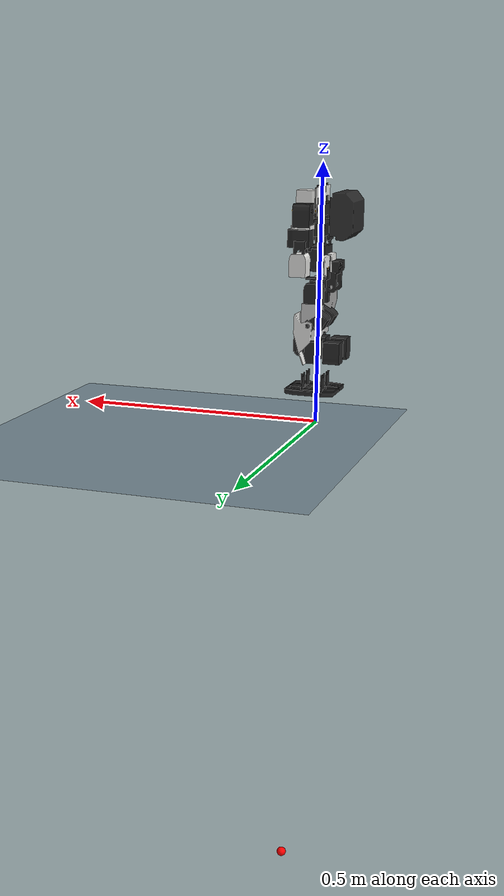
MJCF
<mujoco model="roid1_mjcf scene">
  <include file="roid1_mjcf.xml"/>

  <statistic center="0 0 0.500000" extent="0.800000"/>

  <visual>
    <headlight diffuse="0.6 0.6 0.6" ambient="0.3 0.3 0.3" specular="0 0 0"/>
    <rgba haze="0.15 0.25 0.35 1"/>
    <global azimuth="-130" elevation="-20"/>
  </visual>

  <asset>
    <texture type="skybox" builtin="gradient" rgb1="0.3 0.5 0.7" rgb2="0 0 0" width="512" height="3072"/>
    <texture type="2d" name="groundplane" builtin="checker" mark="edge" rgb1="0.2 0.3 0.4" rgb2="0.1 0.2 0.3"
      markrgb="0.8 0.8 0.8" width="300" height="300"/>
    <material name="groundplane" texture="groundplane" texuniform="true" texrepeat="5 5" reflectance="0.2"/>
  </asset>

  <worldbody>
    <!-- Ground/Environment -->
    <light pos="0 0 1.5" dir="0 0 -1" directional="true"/>
    <geom name="floor" size="0 0 0.05" type="plane" material="groundplane" group="0"/>
    <!-- Touch detection sphere: world-fixed, hidden unless --sphere is specified. -->
    <body name="touch_sphere_body" pos="0.05 0.0 -1.0">
      <geom name="touch_sphere" type="sphere" size="0.01" rgba="1 0 0 1" contype="1" conaffinity="1"/>
    </body>
  </worldbody>
</mujoco>

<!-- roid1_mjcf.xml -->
<mujoco model="roid1_mjcf">
  <compiler angle="radian" meshdir="assets" autolimits="true" />

  <option timestep="0.002" iterations="30" cone="elliptic" impratio="100" />

  <default>
    <!-- textset -->
    <joint damping="0.1" armature="0.01" frictionloss="0.005"/>
    <position inheritrange="1" timeconst="0.01"/>
    <geom friction="0.4" margin="0.001" condim="3"/>
    <!-- textーtext：group=0 -->
    <default class="collision">
      <geom group="0"/>
    </default>
    <!-- text：group=1(text) -->
    <default class="visual">
      <geom contype="0" conaffinity="0" group="1"/>
    </default>
  </default>

  <asset>
    <material name="metal" rgba=".9 .95 .95 1" />
    <material name="black" rgba="0 0 0 1" />
    <material name="white" rgba="1 1 1 1" />
    <material name="gray" rgba="0.671705 0.692426 0.774270 1" />

    <mesh name="c_chest" file="c_chest.obj" />
    <mesh name="c_chest_dec1" file="c_chest_dec1.obj" />
    <mesh name="c_chest_dec2" file="c_chest_dec2.obj" />
    <mesh name="c_head" file="c_head.obj" />
    <mesh name="c_waist" file="c_waist.obj" />
    <mesh name="l_ankle" file="l_ankle.obj" />
    <mesh name="l_arm_lower" file="l_arm_lower.obj" />
    <mesh name="l_arm_upper" file="l_arm_upper.obj" />
    <mesh name="l_arm_upper_dec1" file="l_arm_upper_dec1.obj" />
    <mesh name="l_elbow" file="l_elbow.obj" />
    <mesh name="l_foot_middle" file="l_foot_middle.obj" />
    <mesh name="l_hipjoint_lower" file="l_hipjoint_lower.obj" />
    <mesh name="l_hipjoint_upper" file="l_hipjoint_upper.obj" />
    <mesh name="l_hipjoint_upper_dec1" file="l_hipjoint_upper_dec1.obj" />
    <mesh name="l_leg_lower" file="l_leg_lower.obj" />
    <mesh name="l_leg_lower_dec1" file="l_leg_lower_dec1.obj" />
    <mesh name="l_leg_upper" file="l_leg_upper.obj" />
    <mesh name="l_leg_upper_dec1" file="l_leg_upper_dec1.obj" />
    <mesh name="l_shoulder" file="l_shoulder.obj" />
    <mesh name="l_shoulder_dec1" file="l_shoulder_dec1.obj" />
    <mesh name="r_ankle" file="r_ankle.obj" />
    <mesh name="r_arm_lower" file="r_arm_lower.obj" />
    <mesh name="r_arm_upper" file="r_arm_upper.obj" />
    <mesh name="r_arm_upper_dec1" file="r_arm_upper_dec1.obj" />
    <mesh name="r_elbow" file="r_elbow.obj" />
    <mesh name="r_foot_middle" file="r_foot_middle.obj" />
    <mesh name="r_hipjoint_lower" file="r_hipjoint_lower.obj" />
    <mesh name="r_hipjoint_upper" file="r_hipjoint_upper.obj" />
    <mesh name="r_hipjoint_upper_dec1" file="r_hipjoint_upper_dec1.obj" />
    <mesh name="r_leg_lower" file="r_leg_lower.obj" />
    <mesh name="r_leg_lower_dec1" file="r_leg_lower_dec1.obj" />
    <mesh name="r_leg_upper" file="r_leg_upper.obj" />
    <mesh name="r_leg_upper_dec1" file="r_leg_upper_dec1.obj" />
    <mesh name="r_shoulder" file="r_shoulder.obj" />
    <mesh name="r_shoulder_dec1" file="r_shoulder_dec1.obj" />
  </asset>

  <worldbody>
    <!-- タッチ検出球: ワールド固定, 接触で非表示 -->
    <body name="touch_sphere_body" pos="0.05 0.0 -1.0">
      <geom name="touch_sphere" type="sphere" size="0.01" rgba="1 0 0 1" contype="1" conaffinity="1"/>
    </body>
    <body name="c_waist" pos="0 0 0.35">
      <freejoint />
      <!-- text(displaytext) -->
      <geom class="visual" type="mesh" mesh="c_waist" rgba="0.153 0.153 0.153 1.0" group="1"/>
      <!-- textー(text) -->
      <geom class="collision" type="box" size="0.0205 0.03205 0.01475" pos="-0.0115 0.0 -0.002" quat="1.0 0.0 0.0 0.0" group="3"/>
      <body name="c_chest" pos="0.0 -0.0 0.0198">
        <joint name="c_chest_yaw" type="hinge" pos="0 0 0" axis="0 0 1" range="-3.141592653589793 3.141592653589793" limited="true" margin="0.0035" armature="0.01" frictionloss="0.005" damping="0.18" />
        <inertial pos="-0.016071 -0.000121 0.032638" mass="0.4215" fullinertia="0.0006944 0.00082653 0.00086974 0 0 0" />
        <!-- text(displaytext) -->
        <geom class="visual" type="mesh" mesh="c_chest" rgba="0.153 0.153 0.153 1.0" group="1"/>
        <!-- textー(text) -->
        <geom class="collision" type="box" size="0.0585 0.04505 0.0278" pos="-0.0131 -0.0005 0.0341" quat="1.0 0.0 0.0 0.0" group="3"/>
        <body name="c_head" pos="0.01603 0.0 0.0624">
          <joint name="c_head_yaw" type="hinge" pos="0 0 0" axis="0 0 1" range="-3.141592653589793 3.141592653589793" limited="true" margin="0.0035" armature="0.01" frictionloss="0.005" damping="0.18" />
          <inertial pos="0.004414 0.000003 0.02119" mass="0.013" fullinertia="0.0000041 0.00000528 0.00000497 0 0 0" />
          <!-- text(displaytext) -->
          <geom class="visual" type="mesh" mesh="c_head" rgba="0.882 0.882 0.871 1.0" group="1"/>
          <!-- textー(text) -->
          <geom class="collision" type="box" size="0.0235 0.0145 0.01575" pos="0.0032 0.0 0.0227" quat="1.0 0.0 0.0 0.0" group="3"/>
          <!-- FPVカメラ: 前方+X向き(Rx(π/2)·Ry(-π/2)), 上方+Z, 目の位置 -->
          <camera name="head_fpv" pos="0.015 0 0.025" euler="1.5707963 -1.5707963 0" fovy="80"/>
        </body>
        <body name="l_shoulder" pos="0.01603 0.048855 0.045405">
          <joint name="l_shoulder_pitch" type="hinge" pos="0 0 0" axis="0 1 0" range="-3.141592653589793 3.141592653589793" limited="true" margin="0.0035" armature="0.01" frictionloss="0.005" damping="0.18" />
          <inertial pos="-0.000143 0.021036 0.000103" mass="0.014" fullinertia="0.00000319 0.00000465 0.0000058 0 0 0" />
          <!-- text(displaytext) -->
          <geom class="visual" type="mesh" mesh="l_shoulder" rgba="0.882 0.882 0.871 1.0" group="1"/>
          <!-- textー(text) -->
          <geom class="collision" type="cylinder" size="0.01 0.0036" pos="0.0 0.004 0.0" quat="0.7071067811865476 -0.7071067811865475 0.0 0.0" group="3"/>
          <body name="l_arm_upper" pos="0.0 0.02555 0.0">
            <joint name="l_arm_upper_roll" type="hinge" pos="0 0 0" axis="1 0 0" range="-0.174532925199433 3.316125578789226" limited="true" margin="0.0035" armature="0.01" frictionloss="0.005" damping="0.18" />
            <inertial pos="-0.002104 0.000357 -0.033527" mass="0.098" fullinertia="0.00007063 0.00007913 0.00003688 0 0 0" />
            <!-- text(displaytext) -->
            <geom class="visual" type="mesh" mesh="l_arm_upper" rgba="0.153 0.153 0.153 1.0" group="1"/>
            <!-- textー(text) -->
            <geom class="collision" type="box" size="0.01445 0.01045 0.038" pos="-0.0002 0.0 -0.0305" quat="1.0 0.0 0.0 0.0" group="3"/>
            <body name="l_elbow" pos="-0.00015 0.0 -0.074">
              <joint name="l_elbow_yaw" type="hinge" pos="0 0 0" axis="0 0 1" range="-1.570796326794897 1.570796326794897" limited="true" margin="0.0035" armature="0.01" frictionloss="0.005" damping="0.18" />
              <inertial pos="-0.006581 0.000258 -0.014196" mass="0.044" fullinertia="0.0000105 0.00001256 0.00001357 0 0 0" />
              <!-- text(displaytext) -->
              <geom class="visual" type="mesh" mesh="l_elbow" rgba="0.153 0.153 0.153 1.0" group="1"/>
              <!-- textー(text) -->
              <geom class="collision" type="box" size="0.0205 0.01505 0.01005" pos="-0.007 0.0005 -0.0145" quat="1.0 0.0 0.0 0.0" group="3"/>
              <body name="l_arm_lower" pos="0.004527 0.0 -0.01457">
                <joint name="l_arm_lower_pitch" type="hinge" pos="0 0 0" axis="0 1 0" range="-2.443460952792061 0.523598775598299" limited="true" margin="0.0035" armature="0.01" frictionloss="0.005" damping="0.18" />
                <inertial pos="-0.002104 0.000357 -0.043527" mass="0.03" fullinertia="0.00005277 0.00005106 0.00001242 0 0 0" />
                <!-- text(displaytext) -->
                <geom class="visual" type="mesh" mesh="l_arm_lower" rgba="0.882 0.882 0.871 1.0" group="1"/>
                <!-- textー(text) -->
                <geom class="collision" type="capsule" size="0.0161 0.01945" pos="-0.0022 0.0 -0.0616" quat="1.0 0.0 0.0 0.0" group="3"/>
              </body>
            </body>
            <geom class="visual" type="mesh" mesh="l_arm_upper_dec1" rgba="0.882 0.882 0.871 1.0" pos="0.0 0.0 0.0"/>
          </body>
          <geom class="visual" type="mesh" mesh="l_shoulder_dec1" rgba="1.0 0.667 0.0 1.0" pos="0.0 0.0 0.0"/>
        </body>
        <body name="r_shoulder" pos="0.01603 -0.048855 0.045405">
          <joint name="r_shoulder_pitch" type="hinge" pos="0 0 0" axis="0 1 0" range="-3.141592653589793 3.141592653589793" limited="true" margin="0.0035" armature="0.01" frictionloss="0.005" damping="0.18" />
          <inertial pos="-0.000143 -0.021036 0.000103" mass="0.014" fullinertia="0.00000319 0.00000465 0.0000058 0 0 0" />
          <!-- text(displaytext) -->
          <geom class="visual" type="mesh" mesh="r_shoulder" rgba="0.882 0.882 0.871 1.0" group="1"/>
          <!-- textー(text) -->
          <geom class="collision" type="cylinder" size="0.01 0.0036" pos="0.0 -0.004 0.0" quat="0.7071067811865476 0.7071067811865475 0.0 -0.0" group="3"/>
          <body name="r_arm_upper" pos="0.0 -0.02555 0.0">
            <joint name="r_arm_upper_roll" type="hinge" pos="0 0 0" axis="1 0 0" range="-3.316125578789226 0.174532925199433" limited="true" margin="0.0035" armature="0.01" frictionloss="0.005" damping="0.18" />
            <inertial pos="-0.002104 -0.000357 -0.033527" mass="0.098" fullinertia="0.00007063 0.00007913 0.00003688 0 0 0" />
            <!-- text(displaytext) -->
            <geom class="visual" type="mesh" mesh="r_arm_upper" rgba="0.153 0.153 0.153 1.0" group="1"/>
            <!-- textー(text) -->
            <geom class="collision" type="box" size="0.01445 0.01045 0.038" pos="-0.0002 0.0 -0.0305" quat="1.0 0.0 0.0 0.0" group="3"/>
            <body name="r_elbow" pos="-0.00015 -0.0 -0.074">
              <joint name="r_elbow_yaw" type="hinge" pos="0 0 0" axis="0 0 1" range="-1.570796326794897 1.570796326794897" limited="true" margin="0.0035" armature="0.01" frictionloss="0.005" damping="0.18" />
              <inertial pos="-0.006581 -0.000258 -0.014196" mass="0.044" fullinertia="0.0000105 0.00001256 0.00001357 0 0 0" />
              <!-- text(displaytext) -->
              <geom class="visual" type="mesh" mesh="r_elbow" rgba="0.153 0.153 0.153 1.0" group="1"/>
              <!-- textー(text) -->
              <geom class="collision" type="box" size="0.0205 0.01505 0.01005" pos="-0.007 -0.0005 -0.0145" quat="1.0 0.0 0.0 0.0" group="3"/>
              <body name="r_arm_lower" pos="0.004527 -0.0 -0.01457">
                <joint name="r_arm_lower_pitch" type="hinge" pos="0 0 0" axis="0 1 0" range="-2.443460952792061 0.523598775598299" limited="true" margin="0.0035" armature="0.01" frictionloss="0.005" damping="0.18" />
                <inertial pos="-0.002104 -0.000357 -0.043527" mass="0.03" fullinertia="0.00005277 0.00005106 0.00001242 0 0 0" />
                <!-- text(displaytext) -->
                <geom class="visual" type="mesh" mesh="r_arm_lower" rgba="0.882 0.882 0.871 1.0" group="1"/>
                <!-- textー(text) -->
                <geom class="collision" type="capsule" size="0.0161 0.02195" pos="-0.0022 0.0 -0.0626" quat="1.0 0.0 0.0 0.0" group="3"/>
              </body>
            </body>
            <geom class="visual" type="mesh" mesh="r_arm_upper_dec1" rgba="0.882 0.882 0.871 1.0" pos="0.0 -0.0 0.0"/>
          </body>
          <geom class="visual" type="mesh" mesh="r_shoulder_dec1" rgba="1.0 0.667 0.0 1.0" pos="0.0 -0.0 0.0"/>
        </body>
        <geom class="visual" type="mesh" mesh="c_chest_dec1" rgba="0.882 0.882 0.871 1.0" pos="0.0 0.0 0.0"/>
        <geom class="visual" type="mesh" mesh="c_chest_dec2" rgba="0.153 0.153 0.153 1.0" pos="0.0 0.0 0.0"/>
      </body>
      <body name="l_hipjoint_upper" pos="0.0 0.02155 -0.02175">
        <joint name="l_hipjoint_upper_yaw" type="hinge" pos="0 0 0" axis="0 0 1" range="-0.349065850398866 0.523598775598299" limited="true" margin="0.0035" armature="0.01" frictionloss="0.005" damping="0.18" />
        <inertial pos="0.002326 0.001426 -0.01121" mass="0.0115" fullinertia="0.00000402 0.0000068 0.0000065 0 0 0" />
        <!-- text(displaytext) -->
        <geom class="visual" type="mesh" mesh="l_hipjoint_upper" rgba="0.882 0.882 0.871 1.0" group="1"/>
        <!-- textー(text) -->
        <geom class="collision" type="box" size="0.02305 0.01375 0.0015" pos="0.0028 0.0005 -0.001" quat="1.0 0.0 0.0 0.0" group="3"/>
        <body name="l_hipjoint_lower" pos="0.0 -0.00455 -0.0232">
          <joint name="l_hipjoint_lower_roll" type="hinge" pos="0 0 0" axis="1 0 0" range="-0.174532925199433 1.570796326794897" limited="true" margin="0.0035" armature="0.01" frictionloss="0.005" damping="0.18" />
          <inertial pos="0.003874 0.0115 -0.00485" mass="0.058" fullinertia="0.00003081 0.00001833 0.00002693 0 0 0" />
          <!-- text(displaytext) -->
          <geom class="visual" type="mesh" mesh="l_hipjoint_lower" rgba="0.153 0.153 0.153 1.0" group="1"/>
          <!-- textー(text) -->
          <geom class="collision" type="box" size="0.01455 0.02025 0.00995" pos="0.0038 0.0115 0.0" quat="1.0 0.0 0.0 0.0" group="3"/>
          <body name="l_leg_upper" pos="0.0039 0.0115 -0.0385">
            <joint name="l_leg_upper_pitch" type="hinge" pos="0 0 0" axis="0 1 0" range="-1.570796326794897 1.570796326794897" limited="true" margin="0.0035" armature="0.01" frictionloss="0.005" damping="0.18" />
            <inertial pos="0.004137 -0.00005 -0.032305" mass="0.091" fullinertia="0.00006864 0.00006946 0.0000304 0 0 0" />
            <!-- text(displaytext) -->
            <geom class="visual" type="mesh" mesh="l_leg_upper" rgba="0.153 0.153 0.153 1.0" group="1"/>
            <!-- textー(text) -->
            <geom class="collision" type="box" size="0.00965 0.01605 0.03825" pos="0.0003 0.0003 -0.0298" quat="1.0 0.0 0.0 0.0" group="3"/>
            <body name="l_leg_lower" pos="7e-05 0.0 -0.06501">
              <joint name="l_leg_lower_pitch" type="hinge" pos="0 0 0" axis="0 1 0" range="-0.087266462599716 2.792526803190927" limited="true" margin="0.0035" armature="0.01" frictionloss="0.005" damping="0.18" />
              <inertial pos="0.001202 0.0001 -0.030834" mass="0.061" fullinertia="0.00003888 0.00003893 0.00001607 0 0 0" />
              <!-- text(displaytext) -->
              <geom class="visual" type="mesh" mesh="l_leg_lower" rgba="0.153 0.153 0.153 1.0" group="1"/>
              <!-- textー(text) -->
              <geom class="collision" type="box" size="0.01025 0.0155 0.02" pos="0.0033 0.0003 -0.0542" quat="0.9902680684146087 -0.0009604974588484768 0.13916978883016126 -2.27680269874065e-10" group="3"/>
              <body name="l_ankle" pos="8e-05 -1e-06 -0.0652">
                <joint name="l_ankle_pitch" type="hinge" pos="0 0 0" axis="0 1 0" range="-1.919862177193763 2.268928027592628" limited="true" margin="0.0035" armature="0.01" frictionloss="0.005" damping="0.18" />
                <inertial pos="0.001028 0.00022 -0.032516" mass="0.058" fullinertia="0.0000342 0.00002997 0.00002268 0 0 0" />
                <!-- text(displaytext) -->
                <geom class="visual" type="mesh" mesh="l_ankle" rgba="0.153 0.153 0.153 1.0" group="1"/>
                <!-- textー(text) -->
                <geom class="collision" type="box" size="0.01455 0.02075 0.00945" pos="-0.0002 0.0 -0.0385" quat="1.0 0.0 0.0 0.0" group="3"/>
                <body name="l_foot" pos="0.0 -0.011503 -0.03848">
                  <joint name="l_foot_roll" type="hinge" pos="0 0 0" axis="1 0 0" range="-1.570796326794897 0.349065850398866" limited="true" margin="0.0035" armature="0.01" frictionloss="0.005" damping="0.18" />
                  <inertial pos="0.000045 0.019624 -0.020018" mass="0.0301" fullinertia="0.00001987 0.0000308 0.0000363 0 0 0" />
                  <!-- text(displaytext) -->
                  <geom class="visual" type="mesh" mesh="l_foot_middle" rgba="0.153 0.153 0.153 1.0" group="1"/>
                  <!-- textー(text) -->
                  <geom class="collision" type="box" size="0.0459 0.0285 0.0035" pos="0.0001 0.0206 -0.0225" quat="1.0 0.0 0.0 0.0" group="3"/>
                </body>
              </body>
              <geom class="visual" type="mesh" mesh="l_leg_lower_dec1" rgba="0.882 0.882 0.871 1.0" pos="0.0 0.0 0.0"/>
            </body>
            <geom class="visual" type="mesh" mesh="l_leg_upper_dec1" rgba="0.757 0.757 0.757 1.0" pos="0.0 0.0 0.0"/>
          </body>
        </body>
        <geom class="visual" type="mesh" mesh="l_hipjoint_upper_dec1" rgba="1.0 0.667 0.0 1.0" pos="0.0 0.0 0.0"/>
      </body>
      <body name="r_hipjoint_upper" pos="0.0 -0.02155 -0.02175">
        <joint name="r_hipjoint_upper_yaw" type="hinge" pos="0 0 0" axis="0 0 1" range="-0.523598775598299 0.349065850398866" limited="true" margin="0.0035" armature="0.01" frictionloss="0.005" damping="0.18" />
        <inertial pos="0.002326 -0.001426 -0.01121" mass="0.0115" fullinertia="0.00000402 0.0000068 0.0000065 0 0 0" />
        <!-- text(displaytext) -->
        <geom class="visual" type="mesh" mesh="r_hipjoint_upper" rgba="0.882 0.882 0.871 1.0" group="1"/>
        <!-- textー(text) -->
        <geom class="collision" type="box" size="0.02305 0.01375 0.0015" pos="0.0028 -0.0005 -0.001" quat="1.0 0.0 0.0 0.0" group="3"/>
        <body name="r_hipjoint_lower" pos="0.0 0.00455 -0.0232">
          <joint name="r_hipjoint_lower_roll" type="hinge" pos="0 0 0" axis="1 0 0" range="-1.570796326794897 0.174532925199433" limited="true" margin="0.0035" armature="0.01" frictionloss="0.005" damping="0.18" />
          <inertial pos="0.003874 -0.0115 -0.00485" mass="0.058" fullinertia="0.00003081 0.00001833 0.00002693 0 0 0" />
          <!-- text(displaytext) -->
          <geom class="visual" type="mesh" mesh="r_hipjoint_lower" rgba="0.153 0.153 0.153 1.0" group="1"/>
          <!-- textー(text) -->
          <geom class="collision" type="box" size="0.01455 0.02025 0.00995" pos="0.0038 -0.0115 0.0" quat="1.0 0.0 0.0 0.0" group="3"/>
          <body name="r_leg_upper" pos="0.0039 -0.0115 -0.0385">
            <joint name="r_leg_upper_pitch" type="hinge" pos="0 0 0" axis="0 1 0" range="-1.570796326794897 1.570796326794897" limited="true" margin="0.0035" armature="0.01" frictionloss="0.005" damping="0.18" />
            <inertial pos="0.004137 0.00005 -0.032305" mass="0.091" fullinertia="0.00006864 0.00006946 0.0000304 0 0 0" />
            <!-- text(displaytext) -->
            <geom class="visual" type="mesh" mesh="r_leg_upper" rgba="0.153 0.153 0.153 1.0" group="1"/>
            <!-- textー(text) -->
            <geom class="collision" type="box" size="0.00965 0.01605 0.03825" pos="0.0003 -0.0003 -0.0298" quat="1.0 0.0 0.0 0.0" group="3"/>
            <body name="r_leg_lower" pos="7e-05 -0.0 -0.06501">
              <joint name="r_leg_lower_pitch" type="hinge" pos="0 0 0" axis="0 1 0" range="-0.087266462599716 2.792526803190927" limited="true" margin="0.0035" armature="0.01" frictionloss="0.005" damping="0.18" />
              <inertial pos="0.001202 -0.0001 -0.030834" mass="0.061" fullinertia="0.00003888 0.00003893 0.00001607 0 0 0" />
              <!-- text(displaytext) -->
              <geom class="visual" type="mesh" mesh="r_leg_lower" rgba="0.153 0.153 0.153 1.0" group="1"/>
              <!-- textー(text) -->
              <geom class="collision" type="box" size="0.01025 0.0155 0.02" pos="0.0033 -0.0003 -0.0542" quat="0.9902680684146087 0.0009604974588484768 0.13916978883016126 2.27680269874065e-10" group="3"/>
              <body name="r_ankle" pos="8e-05 1e-06 -0.0652">
                <joint name="r_ankle_pitch" type="hinge" pos="0 0 0" axis="0 1 0" range="-1.919862177193763 2.268928027592628" limited="true" margin="0.0035" armature="0.01" frictionloss="0.005" damping="0.18" />
                <inertial pos="0.001028 -0.00022 -0.032516" mass="0.058" fullinertia="0.0000342 0.00002997 0.00002268 0 0 0" />
                <!-- text(displaytext) -->
                <geom class="visual" type="mesh" mesh="r_ankle" rgba="0.153 0.153 0.153 1.0" group="1"/>
                <!-- textー(text) -->
                <geom class="collision" type="box" size="0.01455 0.02075 0.00945" pos="-0.0002 0.0 -0.0385" quat="1.0 0.0 0.0 0.0" group="3"/>
                <body name="r_foot" pos="0.0 0.011503 -0.03848">
                  <joint name="r_foot_roll" type="hinge" pos="0 0 0" axis="1 0 0" range="-0.349065850398866 1.570796326794897" limited="true" margin="0.0035" armature="0.01" frictionloss="0.005" damping="0.18" />
                  <inertial pos="0.000045 -0.019624 -0.020018" mass="0.0301" fullinertia="0.00001987 0.0000308 0.0000363 0 0 0" />
                  <!-- text(displaytext) -->
                  <geom class="visual" type="mesh" mesh="r_foot_middle" rgba="0.153 0.153 0.153 1.0" group="1"/>
                  <!-- textー(text) -->
                  <geom class="collision" type="box" size="0.0459 0.0285 0.0035" pos="0.0001 -0.0206 -0.0225" quat="1.0 0.0 0.0 0.0" group="3"/>
                </body>
              </body>
              <geom class="visual" type="mesh" mesh="r_leg_lower_dec1" rgba="0.882 0.882 0.871 1.0" pos="0.0 -0.0 0.0"/>
            </body>
            <geom class="visual" type="mesh" mesh="r_leg_upper_dec1" rgba="0.757 0.757 0.757 1.0" pos="0.0 -0.0 0.0"/>
          </body>
        </body>
        <geom class="visual" type="mesh" mesh="r_hipjoint_upper_dec1" rgba="1.0 0.667 0.0 1.0" pos="0.0 -0.0 0.0"/>
      </body>
    </body>
  </worldbody>

  <actuator>
    <position name="c_chest_actuator" joint="c_chest_yaw" gear="1" kp="100" kv="1" forcerange="-1.37 1.37" forcelimited="true"/>
    <position name="c_head_actuator" joint="c_head_yaw" gear="1" kp="100" kv="1" forcerange="-1.37 1.37" forcelimited="true"/>
    <position name="l_shoulder_actuator" joint="l_shoulder_pitch" gear="1" kp="100" kv="1" forcerange="-1.37 1.37" forcelimited="true"/>
    <position name="l_arm_upper_actuator" joint="l_arm_upper_roll" gear="1" kp="100" kv="1" forcerange="-1.37 1.37" forcelimited="true"/>
    <position name="l_elbow_actuator" joint="l_elbow_yaw" gear="1" kp="100" kv="1" forcerange="-1.37 1.37" forcelimited="true"/>
    <position name="l_arm_lower_actuator" joint="l_arm_lower_pitch" gear="1" kp="100" kv="1" forcerange="-1.37 1.37" forcelimited="true"/>
    <position name="r_shoulder_actuator" joint="r_shoulder_pitch" gear="1" kp="100" kv="1" forcerange="-1.37 1.37" forcelimited="true"/>
    <position name="r_arm_upper_actuator" joint="r_arm_upper_roll" gear="1" kp="100" kv="1" forcerange="-1.37 1.37" forcelimited="true"/>
    <position name="r_elbow_actuator" joint="r_elbow_yaw" gear="1" kp="100" kv="1" forcerange="-1.37 1.37" forcelimited="true"/>
    <position name="r_arm_lower_actuator" joint="r_arm_lower_pitch" gear="1" kp="100" kv="1" forcerange="-1.37 1.37" forcelimited="true"/>
    <position name="l_hipjoint_upper_actuator" joint="l_hipjoint_upper_yaw" gear="1" kp="100" kv="1" forcerange="-1.37 1.37" forcelimited="true"/>
    <position name="l_hipjoint_lower_actuator" joint="l_hipjoint_lower_roll" gear="1" kp="100" kv="1" forcerange="-1.37 1.37" forcelimited="true"/>
    <position name="l_leg_upper_actuator" joint="l_leg_upper_pitch" gear="1" kp="100" kv="1" forcerange="-1.37 1.37" forcelimited="true"/>
    <position name="l_leg_lower_actuator" joint="l_leg_lower_pitch" gear="1" kp="100" kv="1" forcerange="-1.37 1.37" forcelimited="true"/>
    <position name="l_ankle_actuator" joint="l_ankle_pitch" gear="1" kp="100" kv="1" forcerange="-1.37 1.37" forcelimited="true"/>
    <position name="l_foot_actuator" joint="l_foot_roll" gear="1" kp="100" kv="1" forcerange="-1.37 1.37" forcelimited="true"/>
    <position name="r_hipjoint_upper_actuator" joint="r_hipjoint_upper_yaw" gear="1" kp="100" kv="1" forcerange="-1.37 1.37" forcelimited="true"/>
    <position name="r_hipjoint_lower_actuator" joint="r_hipjoint_lower_roll" gear="1" kp="100" kv="1" forcerange="-1.37 1.37" forcelimited="true"/>
    <position name="r_leg_upper_actuator" joint="r_leg_upper_pitch" gear="1" kp="100" kv="1" forcerange="-1.37 1.37" forcelimited="true"/>
    <position name="r_leg_lower_actuator" joint="r_leg_lower_pitch" gear="1" kp="100" kv="1" forcerange="-1.37 1.37" forcelimited="true"/>
    <position name="r_ankle_actuator" joint="r_ankle_pitch" gear="1" kp="100" kv="1" forcerange="-1.37 1.37" forcelimited="true"/>
    <position name="r_foot_actuator" joint="r_foot_roll" gear="1" kp="100" kv="1" forcerange="-1.37 1.37" forcelimited="true"/>
  </actuator>

  <sensor>
    <!-- Add sensors here if needed -->
  </sensor>
</mujoco>
